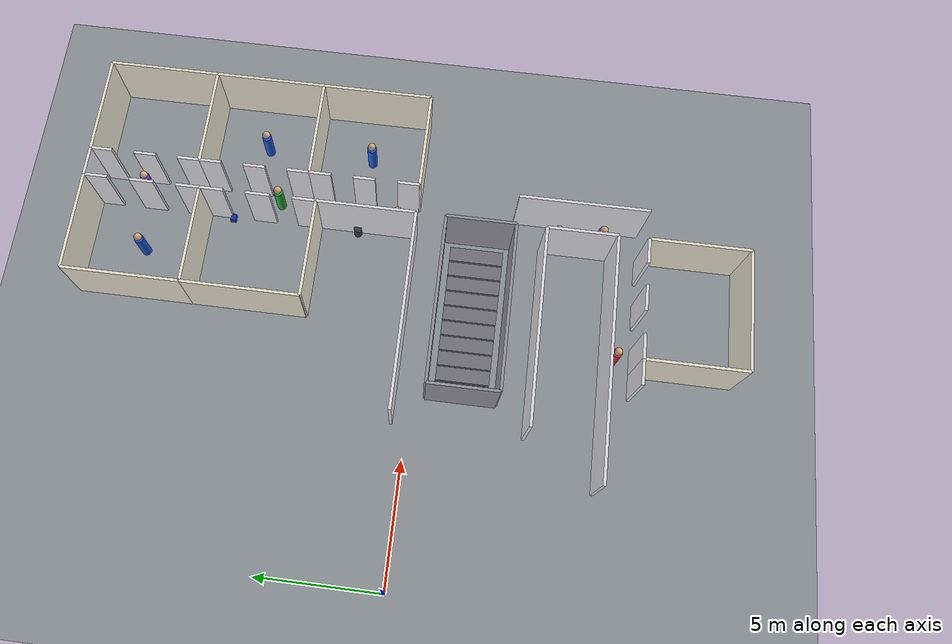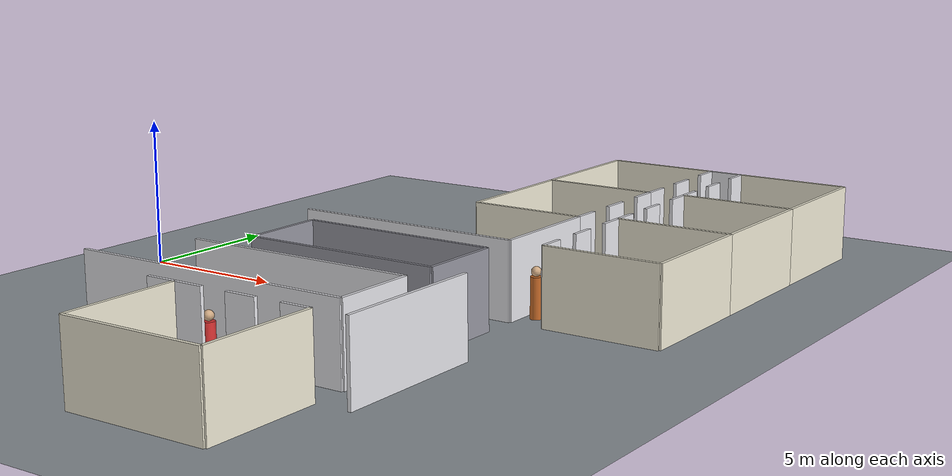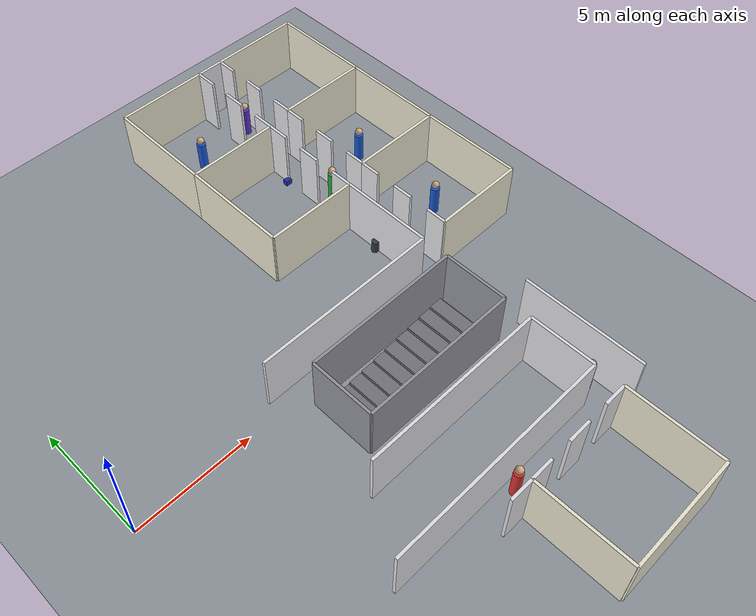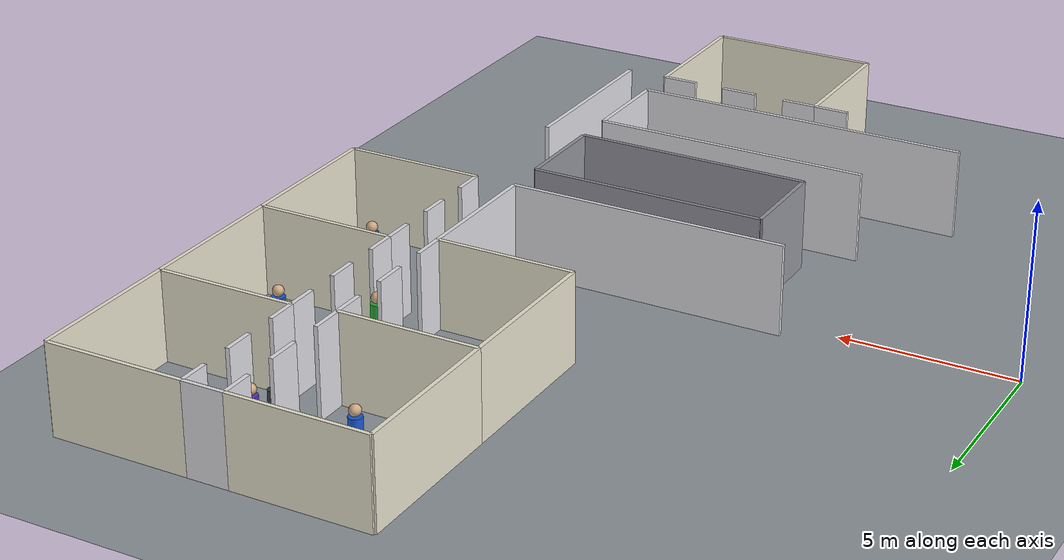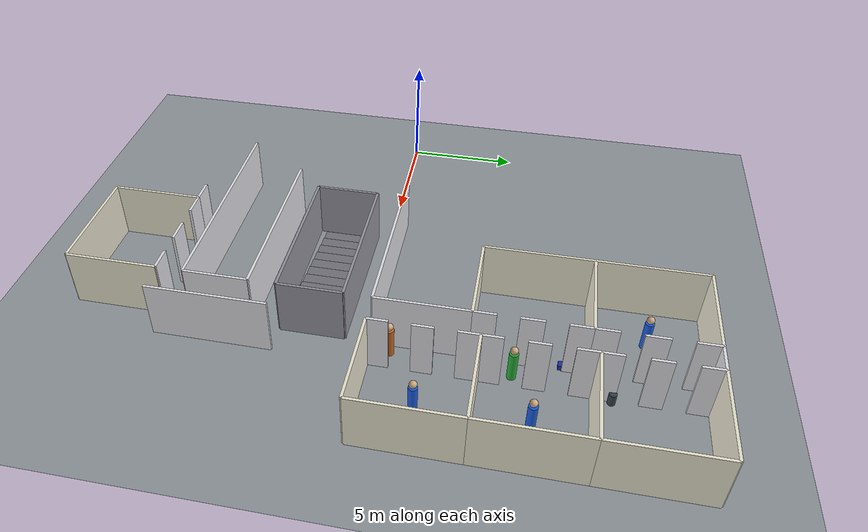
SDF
<sdf version="1.9">
 <world name="school_arena">
  <model name="ground">
   <static>true</static>
   <link name="link">
    <collision name="collision">
     <geometry><plane><normal>0 0 1</normal><size>80 80</size></plane></geometry>
    </collision>
    <visual name="visual">
     <geometry><plane><normal>0 0 1</normal><size>80 80</size></plane></geometry>
     <material><ambient>0.55 0.58 0.60 1</ambient><diffuse>0.55 0.58 0.60 1</diffuse></material>
    </visual>
   </link>
  </model>
  <model name="classroom_05_east">
   <static>true</static>
   <pose>9.5000 -10.6000 1.3000 0 0 0</pose>
   <link name="link">
    <collision name="collision"><geometry><box><size>0.1200 4.0000 2.6000</size></box></geometry></collision>
    <visual name="visual">
     <geometry><box><size>0.1200 4.0000 2.6000</size></box></geometry>
     <material><ambient>0.92 0.90 0.82 1</ambient><diffuse>0.92 0.90 0.82 1</diffuse></material>
    </visual>
   </link>
  </model>
  <model name="classroom_05_front_2">
   <static>true</static>
   <pose>8.9900 -8.6000 1.3000 0 0 0</pose>
   <link name="link">
    <collision name="collision"><geometry><box><size>1.0200 0.1200 2.6000</size></box></geometry></collision>
    <visual name="visual">
     <geometry><box><size>1.0200 0.1200 2.6000</size></box></geometry>
     <material><ambient>0.88 0.88 0.90 1</ambient><diffuse>0.88 0.88 0.90 1</diffuse></material>
    </visual>
   </link>
  </model>
  <model name="classroom_06_south">
   <static>true</static>
   <pose>11.9500 -12.6000 1.3000 0 0 0</pose>
   <link name="link">
    <collision name="collision"><geometry><box><size>4.9000 0.1200 2.6000</size></box></geometry></collision>
    <visual name="visual">
     <geometry><box><size>4.9000 0.1200 2.6000</size></box></geometry>
     <material><ambient>0.92 0.90 0.82 1</ambient><diffuse>0.92 0.90 0.82 1</diffuse></material>
    </visual>
   </link>
  </model>
  <model name="classroom_06_west">
   <static>true</static>
   <pose>9.5000 -10.6000 1.3000 0 0 0</pose>
   <link name="link">
    <collision name="collision"><geometry><box><size>0.1200 4.0000 2.6000</size></box></geometry></collision>
    <visual name="visual">
     <geometry><box><size>0.1200 4.0000 2.6000</size></box></geometry>
     <material><ambient>0.92 0.90 0.82 1</ambient><diffuse>0.92 0.90 0.82 1</diffuse></material>
    </visual>
   </link>
  </model>
  <model name="classroom_06_east">
   <static>true</static>
   <pose>14.4000 -10.6000 1.3000 0 0 0</pose>
   <link name="link">
    <collision name="collision"><geometry><box><size>0.1200 4.0000 2.6000</size></box></geometry></collision>
    <visual name="visual">
     <geometry><box><size>0.1200 4.0000 2.6000</size></box></geometry>
     <material><ambient>0.92 0.90 0.82 1</ambient><diffuse>0.92 0.90 0.82 1</diffuse></material>
    </visual>
   </link>
  </model>
  <model name="classroom_06_front_0">
   <static>true</static>
   <pose>10.0100 -8.6000 1.3000 0 0 0</pose>
   <link name="link">
    <collision name="collision"><geometry><box><size>1.0200 0.1200 2.6000</size></box></geometry></collision>
    <visual name="visual">
     <geometry><box><size>1.0200 0.1200 2.6000</size></box></geometry>
     <material><ambient>0.88 0.88 0.90 1</ambient><diffuse>0.88 0.88 0.90 1</diffuse></material>
    </visual>
   </link>
  </model>
  <model name="classroom_06_front_1">
   <static>true</static>
   <pose>11.9500 -8.6000 1.3000 0 0 0</pose>
   <link name="link">
    <collision name="collision"><geometry><box><size>1.0600 0.1200 2.6000</size></box></geometry></collision>
    <visual name="visual">
     <geometry><box><size>1.0600 0.1200 2.6000</size></box></geometry>
     <material><ambient>0.88 0.88 0.90 1</ambient><diffuse>0.88 0.88 0.90 1</diffuse></material>
    </visual>
   </link>
  </model>
  <model name="classroom_06_front_2">
   <static>true</static>
   <pose>13.8900 -8.6000 1.3000 0 0 0</pose>
   <link name="link">
    <collision name="collision"><geometry><box><size>1.0200 0.1200 2.6000</size></box></geometry></collision>
    <visual name="visual">
     <geometry><box><size>1.0200 0.1200 2.6000</size></box></geometry>
     <material><ambient>0.88 0.88 0.90 1</ambient><diffuse>0.88 0.88 0.90 1</diffuse></material>
    </visual>
   </link>
  </model>
  <model name="classroom_11_south">
   <static>true</static>
   <pose>17.6000 0.6000 1.3000 0 0 0</pose>
   <link name="link">
    <collision name="collision"><geometry><box><size>4.0000 0.1200 2.6000</size></box></geometry></collision>
    <visual name="visual">
     <geometry><box><size>4.0000 0.1200 2.6000</size></box></geometry>
     <material><ambient>0.92 0.90 0.82 1</ambient><diffuse>0.92 0.90 0.82 1</diffuse></material>
    </visual>
   </link>
  </model>
  <model name="classroom_11_north">
   <static>true</static>
   <pose>17.6000 5.0667 1.3000 0 0 0</pose>
   <link name="link">
    <collision name="collision"><geometry><box><size>4.0000 0.1200 2.6000</size></box></geometry></collision>
    <visual name="visual">
     <geometry><box><size>4.0000 0.1200 2.6000</size></box></geometry>
     <material><ambient>0.92 0.90 0.82 1</ambient><diffuse>0.92 0.90 0.82 1</diffuse></material>
    </visual>
   </link>
  </model>
  <model name="classroom_11_east">
   <static>true</static>
   <pose>19.6000 2.8333 1.3000 0 0 0</pose>
   <link name="link">
    <collision name="collision"><geometry><box><size>0.1200 4.4667 2.6000</size></box></geometry></collision>
    <visual name="visual">
     <geometry><box><size>0.1200 4.4667 2.6000</size></box></geometry>
     <material><ambient>0.92 0.90 0.82 1</ambient><diffuse>0.92 0.90 0.82 1</diffuse></material>
    </visual>
   </link>
  </model>
  <model name="classroom_11_front_0">
   <static>true</static>
   <pose>15.6000 1.0450 1.3000 0 0 0</pose>
   <link name="link">
    <collision name="collision"><geometry><box><size>0.1200 0.8900 2.6000</size></box></geometry></collision>
    <visual name="visual">
     <geometry><box><size>0.1200 0.8900 2.6000</size></box></geometry>
     <material><ambient>0.88 0.88 0.90 1</ambient><diffuse>0.88 0.88 0.90 1</diffuse></material>
    </visual>
   </link>
  </model>
  <model name="classroom_11_front_1">
   <static>true</static>
   <pose>15.6000 2.8333 1.3000 0 0 0</pose>
   <link name="link">
    <collision name="collision"><geometry><box><size>0.1200 0.8867 2.6000</size></box></geometry></collision>
    <visual name="visual">
     <geometry><box><size>0.1200 0.8867 2.6000</size></box></geometry>
     <material><ambient>0.88 0.88 0.90 1</ambient><diffuse>0.88 0.88 0.90 1</diffuse></material>
    </visual>
   </link>
  </model>
  <model name="classroom_11_front_2">
   <static>true</static>
   <pose>15.6000 4.6217 1.3000 0 0 0</pose>
   <link name="link">
    <collision name="collision"><geometry><box><size>0.1200 0.8900 2.6000</size></box></geometry></collision>
    <visual name="visual">
     <geometry><box><size>0.1200 0.8900 2.6000</size></box></geometry>
     <material><ambient>0.88 0.88 0.90 1</ambient><diffuse>0.88 0.88 0.90 1</diffuse></material>
    </visual>
   </link>
  </model>
  <model name="classroom_12_south">
   <static>true</static>
   <pose>17.6000 5.0667 1.3000 0 0 0</pose>
   <link name="link">
    <collision name="collision"><geometry><box><size>4.0000 0.1200 2.6000</size></box></geometry></collision>
    <visual name="visual">
     <geometry><box><size>4.0000 0.1200 2.6000</size></box></geometry>
     <material><ambient>0.92 0.90 0.82 1</ambient><diffuse>0.92 0.90 0.82 1</diffuse></material>
    </visual>
   </link>
  </model>
  <model name="classroom_12_north">
   <static>true</static>
   <pose>17.6000 9.5333 1.3000 0 0 0</pose>
   <link name="link">
    <collision name="collision"><geometry><box><size>4.0000 0.1200 2.6000</size></box></geometry></collision>
    <visual name="visual">
     <geometry><box><size>4.0000 0.1200 2.6000</size></box></geometry>
     <material><ambient>0.92 0.90 0.82 1</ambient><diffuse>0.92 0.90 0.82 1</diffuse></material>
    </visual>
   </link>
  </model>
  <model name="classroom_12_east">
   <static>true</static>
   <pose>19.6000 7.3000 1.3000 0 0 0</pose>
   <link name="link">
    <collision name="collision"><geometry><box><size>0.1200 4.4667 2.6000</size></box></geometry></collision>
    <visual name="visual">
     <geometry><box><size>0.1200 4.4667 2.6000</size></box></geometry>
     <material><ambient>0.92 0.90 0.82 1</ambient><diffuse>0.92 0.90 0.82 1</diffuse></material>
    </visual>
   </link>
  </model>
  <model name="classroom_12_front_0">
   <static>true</static>
   <pose>15.6000 5.5117 1.3000 0 0 0</pose>
   <link name="link">
    <collision name="collision"><geometry><box><size>0.1200 0.8900 2.6000</size></box></geometry></collision>
    <visual name="visual">
     <geometry><box><size>0.1200 0.8900 2.6000</size></box></geometry>
     <material><ambient>0.88 0.88 0.90 1</ambient><diffuse>0.88 0.88 0.90 1</diffuse></material>
    </visual>
   </link>
  </model>
  <model name="classroom_12_front_1">
   <static>true</static>
   <pose>15.6000 7.3000 1.3000 0 0 0</pose>
   <link name="link">
    <collision name="collision"><geometry><box><size>0.1200 0.8867 2.6000</size></box></geometry></collision>
    <visual name="visual">
     <geometry><box><size>0.1200 0.8867 2.6000</size></box></geometry>
     <material><ambient>0.88 0.88 0.90 1</ambient><diffuse>0.88 0.88 0.90 1</diffuse></material>
    </visual>
   </link>
  </model>
  <model name="classroom_12_front_2">
   <static>true</static>
   <pose>15.6000 9.0883 1.3000 0 0 0</pose>
   <link name="link">
    <collision name="collision"><geometry><box><size>0.1200 0.8900 2.6000</size></box></geometry></collision>
    <visual name="visual">
     <geometry><box><size>0.1200 0.8900 2.6000</size></box></geometry>
     <material><ambient>0.88 0.88 0.90 1</ambient><diffuse>0.88 0.88 0.90 1</diffuse></material>
    </visual>
   </link>
  </model>
  <model name="classroom_13_south">
   <static>true</static>
   <pose>17.6000 9.5333 1.3000 0 0 0</pose>
   <link name="link">
    <collision name="collision"><geometry><box><size>4.0000 0.1200 2.6000</size></box></geometry></collision>
    <visual name="visual">
     <geometry><box><size>4.0000 0.1200 2.6000</size></box></geometry>
     <material><ambient>0.92 0.90 0.82 1</ambient><diffuse>0.92 0.90 0.82 1</diffuse></material>
    </visual>
   </link>
  </model>
  <model name="classroom_13_north">
   <static>true</static>
   <pose>17.6000 14.0000 1.3000 0 0 0</pose>
   <link name="link">
    <collision name="collision"><geometry><box><size>4.0000 0.1200 2.6000</size></box></geometry></collision>
    <visual name="visual">
     <geometry><box><size>4.0000 0.1200 2.6000</size></box></geometry>
     <material><ambient>0.92 0.90 0.82 1</ambient><diffuse>0.92 0.90 0.82 1</diffuse></material>
    </visual>
   </link>
  </model>
  <model name="classroom_13_east">
   <static>true</static>
   <pose>19.6000 11.7667 1.3000 0 0 0</pose>
   <link name="link">
    <collision name="collision"><geometry><box><size>0.1200 4.4667 2.6000</size></box></geometry></collision>
    <visual name="visual">
     <geometry><box><size>0.1200 4.4667 2.6000</size></box></geometry>
     <material><ambient>0.92 0.90 0.82 1</ambient><diffuse>0.92 0.90 0.82 1</diffuse></material>
    </visual>
   </link>
  </model>
  <model name="classroom_13_front_0">
   <static>true</static>
   <pose>15.6000 9.9783 1.3000 0 0 0</pose>
   <link name="link">
    <collision name="collision"><geometry><box><size>0.1200 0.8900 2.6000</size></box></geometry></collision>
    <visual name="visual">
     <geometry><box><size>0.1200 0.8900 2.6000</size></box></geometry>
     <material><ambient>0.88 0.88 0.90 1</ambient><diffuse>0.88 0.88 0.90 1</diffuse></material>
    </visual>
   </link>
  </model>
  <model name="classroom_13_front_1">
   <static>true</static>
   <pose>15.6000 11.7667 1.3000 0 0 0</pose>
   <link name="link">
    <collision name="collision"><geometry><box><size>0.1200 0.8867 2.6000</size></box></geometry></collision>
    <visual name="visual">
     <geometry><box><size>0.1200 0.8867 2.6000</size></box></geometry>
     <material><ambient>0.88 0.88 0.90 1</ambient><diffuse>0.88 0.88 0.90 1</diffuse></material>
    </visual>
   </link>
  </model>
  <model name="classroom_13_front_2">
   <static>true</static>
   <pose>15.6000 13.5550 1.3000 0 0 0</pose>
   <link name="link">
    <collision name="collision"><geometry><box><size>0.1200 0.8900 2.6000</size></box></geometry></collision>
    <visual name="visual">
     <geometry><box><size>0.1200 0.8900 2.6000</size></box></geometry>
     <material><ambient>0.88 0.88 0.90 1</ambient><diffuse>0.88 0.88 0.90 1</diffuse></material>
    </visual>
   </link>
  </model>
  <model name="classroom_14_south">
   <static>true</static>
   <pose>12.4000 4.6000 1.3000 0 0 0</pose>
   <link name="link">
    <collision name="collision"><geometry><box><size>4.0000 0.1200 2.6000</size></box></geometry></collision>
    <visual name="visual">
     <geometry><box><size>4.0000 0.1200 2.6000</size></box></geometry>
     <material><ambient>0.92 0.90 0.82 1</ambient><diffuse>0.92 0.90 0.82 1</diffuse></material>
    </visual>
   </link>
  </model>
  <model name="classroom_14_north">
   <static>true</static>
   <pose>12.4000 9.3000 1.3000 0 0 0</pose>
   <link name="link">
    <collision name="collision"><geometry><box><size>4.0000 0.1200 2.6000</size></box></geometry></collision>
    <visual name="visual">
     <geometry><box><size>4.0000 0.1200 2.6000</size></box></geometry>
     <material><ambient>0.92 0.90 0.82 1</ambient><diffuse>0.92 0.90 0.82 1</diffuse></material>
    </visual>
   </link>
  </model>
  <model name="classroom_14_west">
   <static>true</static>
   <pose>10.4000 6.9500 1.3000 0 0 0</pose>
   <link name="link">
    <collision name="collision"><geometry><box><size>0.1200 4.7000 2.6000</size></box></geometry></collision>
    <visual name="visual">
     <geometry><box><size>0.1200 4.7000 2.6000</size></box></geometry>
     <material><ambient>0.92 0.90 0.82 1</ambient><diffuse>0.92 0.90 0.82 1</diffuse></material>
    </visual>
   </link>
  </model>
  <model name="classroom_14_front_0">
   <static>true</static>
   <pose>14.4000 5.0800 1.3000 0 0 0</pose>
   <link name="link">
    <collision name="collision"><geometry><box><size>0.1200 0.9600 2.6000</size></box></geometry></collision>
    <visual name="visual">
     <geometry><box><size>0.1200 0.9600 2.6000</size></box></geometry>
     <material><ambient>0.88 0.88 0.90 1</ambient><diffuse>0.88 0.88 0.90 1</diffuse></material>
    </visual>
   </link>
  </model>
  <model name="classroom_14_front_1">
   <static>true</static>
   <pose>14.4000 6.9500 1.3000 0 0 0</pose>
   <link name="link">
    <collision name="collision"><geometry><box><size>0.1200 0.9800 2.6000</size></box></geometry></collision>
    <visual name="visual">
     <geometry><box><size>0.1200 0.9800 2.6000</size></box></geometry>
     <material><ambient>0.88 0.88 0.90 1</ambient><diffuse>0.88 0.88 0.90 1</diffuse></material>
    </visual>
   </link>
  </model>
  <model name="classroom_14_front_2">
   <static>true</static>
   <pose>14.4000 8.8200 1.3000 0 0 0</pose>
   <link name="link">
    <collision name="collision"><geometry><box><size>0.1200 0.9600 2.6000</size></box></geometry></collision>
    <visual name="visual">
     <geometry><box><size>0.1200 0.9600 2.6000</size></box></geometry>
     <material><ambient>0.88 0.88 0.90 1</ambient><diffuse>0.88 0.88 0.90 1</diffuse></material>
    </visual>
   </link>
  </model>
  <model name="classroom_15_south">
   <static>true</static>
   <pose>12.4000 9.3000 1.3000 0 0 0</pose>
   <link name="link">
    <collision name="collision"><geometry><box><size>4.0000 0.1200 2.6000</size></box></geometry></collision>
    <visual name="visual">
     <geometry><box><size>4.0000 0.1200 2.6000</size></box></geometry>
     <material><ambient>0.92 0.90 0.82 1</ambient><diffuse>0.92 0.90 0.82 1</diffuse></material>
    </visual>
   </link>
  </model>
  <model name="classroom_15_north">
   <static>true</static>
   <pose>12.4000 14.0000 1.3000 0 0 0</pose>
   <link name="link">
    <collision name="collision"><geometry><box><size>4.0000 0.1200 2.6000</size></box></geometry></collision>
    <visual name="visual">
     <geometry><box><size>4.0000 0.1200 2.6000</size></box></geometry>
     <material><ambient>0.92 0.90 0.82 1</ambient><diffuse>0.92 0.90 0.82 1</diffuse></material>
    </visual>
   </link>
  </model>
  <model name="classroom_15_west">
   <static>true</static>
   <pose>10.4000 11.6500 1.3000 0 0 0</pose>
   <link name="link">
    <collision name="collision"><geometry><box><size>0.1200 4.7000 2.6000</size></box></geometry></collision>
    <visual name="visual">
     <geometry><box><size>0.1200 4.7000 2.6000</size></box></geometry>
     <material><ambient>0.92 0.90 0.82 1</ambient><diffuse>0.92 0.90 0.82 1</diffuse></material>
    </visual>
   </link>
  </model>
  <model name="classroom_15_front_0">
   <static>true</static>
   <pose>14.4000 9.7800 1.3000 0 0 0</pose>
   <link name="link">
    <collision name="collision"><geometry><box><size>0.1200 0.9600 2.6000</size></box></geometry></collision>
    <visual name="visual">
     <geometry><box><size>0.1200 0.9600 2.6000</size></box></geometry>
     <material><ambient>0.88 0.88 0.90 1</ambient><diffuse>0.88 0.88 0.90 1</diffuse></material>
    </visual>
   </link>
  </model>
  <model name="classroom_15_front_1">
   <static>true</static>
   <pose>14.4000 11.6500 1.3000 0 0 0</pose>
   <link name="link">
    <collision name="collision"><geometry><box><size>0.1200 0.9800 2.6000</size></box></geometry></collision>
    <visual name="visual">
     <geometry><box><size>0.1200 0.9800 2.6000</size></box></geometry>
     <material><ambient>0.88 0.88 0.90 1</ambient><diffuse>0.88 0.88 0.90 1</diffuse></material>
    </visual>
   </link>
  </model>
  <model name="classroom_15_front_2">
   <static>true</static>
   <pose>14.4000 13.5200 1.3000 0 0 0</pose>
   <link name="link">
    <collision name="collision"><geometry><box><size>0.1200 0.9600 2.6000</size></box></geometry></collision>
    <visual name="visual">
     <geometry><box><size>0.1200 0.9600 2.6000</size></box></geometry>
     <material><ambient>0.88 0.88 0.90 1</ambient><diffuse>0.88 0.88 0.90 1</diffuse></material>
    </visual>
   </link>
  </model>
  <model name="corridor_A_north_filler">
   <static>true</static>
   <pose>9.5000 -7.4000 1.3000 0 0 0</pose>
   <link name="link">
    <collision name="collision"><geometry><box><size>9.8000 0.1200 2.6000</size></box></geometry></collision>
    <visual name="visual">
     <geometry><box><size>9.8000 0.1200 2.6000</size></box></geometry>
     <material><ambient>0.88 0.88 0.90 1</ambient><diffuse>0.88 0.88 0.90 1</diffuse></material>
    </visual>
   </link>
  </model>
  <model name="corridor_B_outer_east">
   <static>true</static>
   <pose>15.6000 -6.0000 1.3000 0 0 0</pose>
   <link name="link">
    <collision name="collision"><geometry><box><size>0.1200 5.2000 2.6000</size></box></geometry></collision>
    <visual name="visual">
     <geometry><box><size>0.1200 5.2000 2.6000</size></box></geometry>
     <material><ambient>0.88 0.88 0.90 1</ambient><diffuse>0.88 0.88 0.90 1</diffuse></material>
    </visual>
   </link>
  </model>
  <model name="corridor_B_inner_west_lower">
   <static>true</static>
   <pose>14.4000 -6.0000 1.3000 0 0 0</pose>
   <link name="link">
    <collision name="collision"><geometry><box><size>0.1200 2.8000 2.6000</size></box></geometry></collision>
    <visual name="visual">
     <geometry><box><size>0.1200 2.8000 2.6000</size></box></geometry>
     <material><ambient>0.88 0.88 0.90 1</ambient><diffuse>0.88 0.88 0.90 1</diffuse></material>
    </visual>
   </link>
  </model>
  <model name="corridor_C_outer_south">
   <static>true</static>
   <pose>10.4000 -4.6000 1.3000 0 0 0</pose>
   <link name="link">
    <collision name="collision"><geometry><box><size>8.0000 0.1200 2.6000</size></box></geometry></collision>
    <visual name="visual">
     <geometry><box><size>8.0000 0.1200 2.6000</size></box></geometry>
     <material><ambient>0.88 0.88 0.90 1</ambient><diffuse>0.88 0.88 0.90 1</diffuse></material>
    </visual>
   </link>
  </model>
  <model name="corridor_E_outer_north">
   <static>true</static>
   <pose>10.4000 0.6000 1.3000 0 0 0</pose>
   <link name="link">
    <collision name="collision"><geometry><box><size>8.0000 0.1200 2.6000</size></box></geometry></collision>
    <visual name="visual">
     <geometry><box><size>8.0000 0.1200 2.6000</size></box></geometry>
     <material><ambient>0.88 0.88 0.90 1</ambient><diffuse>0.88 0.88 0.90 1</diffuse></material>
    </visual>
   </link>
  </model>
  <model name="corridor_F_west_lower">
   <static>true</static>
   <pose>14.4000 2.6000 1.3000 0 0 0</pose>
   <link name="link">
    <collision name="collision"><geometry><box><size>0.1200 4.0000 2.6000</size></box></geometry></collision>
    <visual name="visual">
     <geometry><box><size>0.1200 4.0000 2.6000</size></box></geometry>
     <material><ambient>0.88 0.88 0.90 1</ambient><diffuse>0.88 0.88 0.90 1</diffuse></material>
    </visual>
   </link>
  </model>
  <model name="corridor_F_north_end">
   <static>true</static>
   <pose>15.0000 14.0000 1.3000 0 0 0</pose>
   <link name="link">
    <collision name="collision"><geometry><box><size>1.2000 0.1200 2.6000</size></box></geometry></collision>
    <visual name="visual">
     <geometry><box><size>1.2000 0.1200 2.6000</size></box></geometry>
     <material><ambient>0.88 0.88 0.90 1</ambient><diffuse>0.88 0.88 0.90 1</diffuse></material>
    </visual>
   </link>
  </model>
  <model name="stairs_south_wall">
   <static>true</static>
   <pose>11.0000 -3.4000 1.3000 0 0 0</pose>
   <link name="link">
    <collision name="collision"><geometry><box><size>6.8000 0.1200 2.6000</size></box></geometry></collision>
    <visual name="visual">
     <geometry><box><size>6.8000 0.1200 2.6000</size></box></geometry>
     <material><ambient>0.58 0.58 0.62 1</ambient><diffuse>0.58 0.58 0.62 1</diffuse></material>
    </visual>
   </link>
  </model>
  <model name="stairs_west_wall">
   <static>true</static>
   <pose>7.6000 -2.0000 1.3000 0 0 0</pose>
   <link name="link">
    <collision name="collision"><geometry><box><size>0.1200 2.8000 2.6000</size></box></geometry></collision>
    <visual name="visual">
     <geometry><box><size>0.1200 2.8000 2.6000</size></box></geometry>
     <material><ambient>0.58 0.58 0.62 1</ambient><diffuse>0.58 0.58 0.62 1</diffuse></material>
    </visual>
   </link>
  </model>
  <model name="stairs_north_wall">
   <static>true</static>
   <pose>11.0000 -0.6000 1.3000 0 0 0</pose>
   <link name="link">
    <collision name="collision"><geometry><box><size>6.8000 0.1200 2.6000</size></box></geometry></collision>
    <visual name="visual">
     <geometry><box><size>6.8000 0.1200 2.6000</size></box></geometry>
     <material><ambient>0.58 0.58 0.62 1</ambient><diffuse>0.58 0.58 0.62 1</diffuse></material>
    </visual>
   </link>
  </model>
  <model name="stairs_east_wall">
   <static>true</static>
   <pose>14.4000 -2.0000 1.3000 0 0 0</pose>
   <link name="link">
    <collision name="collision"><geometry><box><size>0.1200 2.8000 2.6000</size></box></geometry></collision>
    <visual name="visual">
     <geometry><box><size>0.1200 2.8000 2.6000</size></box></geometry>
     <material><ambient>0.58 0.58 0.62 1</ambient><diffuse>0.58 0.58 0.62 1</diffuse></material>
    </visual>
   </link>
  </model>
  <model name="stair_step_01">
   <static>true</static>
   <pose>8.0500 -2.0000 0.0400 0 0 0</pose>
   <link name="link">
    <collision name="collision"><geometry><box><size>0.5800 2.1500 0.0800</size></box></geometry></collision>
    <visual name="visual">
     <geometry><box><size>0.5800 2.1500 0.0800</size></box></geometry>
     <material><ambient>0.45 0.45 0.48 1</ambient><diffuse>0.45 0.45 0.48 1</diffuse></material>
    </visual>
   </link>
  </model>
  <model name="stair_step_02">
   <static>true</static>
   <pose>8.6600 -2.0000 0.0800 0 0 0</pose>
   <link name="link">
    <collision name="collision"><geometry><box><size>0.5800 2.1500 0.1600</size></box></geometry></collision>
    <visual name="visual">
     <geometry><box><size>0.5800 2.1500 0.1600</size></box></geometry>
     <material><ambient>0.45 0.45 0.48 1</ambient><diffuse>0.45 0.45 0.48 1</diffuse></material>
    </visual>
   </link>
  </model>
  <model name="stair_step_03">
   <static>true</static>
   <pose>9.2700 -2.0000 0.1200 0 0 0</pose>
   <link name="link">
    <collision name="collision"><geometry><box><size>0.5800 2.1500 0.2400</size></box></geometry></collision>
    <visual name="visual">
     <geometry><box><size>0.5800 2.1500 0.2400</size></box></geometry>
     <material><ambient>0.45 0.45 0.48 1</ambient><diffuse>0.45 0.45 0.48 1</diffuse></material>
    </visual>
   </link>
  </model>
  <model name="stair_step_04">
   <static>true</static>
   <pose>9.8800 -2.0000 0.1600 0 0 0</pose>
   <link name="link">
    <collision name="collision"><geometry><box><size>0.5800 2.1500 0.3200</size></box></geometry></collision>
    <visual name="visual">
     <geometry><box><size>0.5800 2.1500 0.3200</size></box></geometry>
     <material><ambient>0.45 0.45 0.48 1</ambient><diffuse>0.45 0.45 0.48 1</diffuse></material>
    </visual>
   </link>
  </model>
  <model name="stair_step_05">
   <static>true</static>
   <pose>10.4900 -2.0000 0.2000 0 0 0</pose>
   <link name="link">
    <collision name="collision"><geometry><box><size>0.5800 2.1500 0.4000</size></box></geometry></collision>
    <visual name="visual">
     <geometry><box><size>0.5800 2.1500 0.4000</size></box></geometry>
     <material><ambient>0.45 0.45 0.48 1</ambient><diffuse>0.45 0.45 0.48 1</diffuse></material>
    </visual>
   </link>
  </model>
  <model name="stair_step_06">
   <static>true</static>
   <pose>11.1000 -2.0000 0.2400 0 0 0</pose>
   <link name="link">
    <collision name="collision"><geometry><box><size>0.5800 2.1500 0.4800</size></box></geometry></collision>
    <visual name="visual">
     <geometry><box><size>0.5800 2.1500 0.4800</size></box></geometry>
     <material><ambient>0.45 0.45 0.48 1</ambient><diffuse>0.45 0.45 0.48 1</diffuse></material>
    </visual>
   </link>
  </model>
  <model name="stair_step_07">
   <static>true</static>
   <pose>11.7100 -2.0000 0.2800 0 0 0</pose>
   <link name="link">
    <collision name="collision"><geometry><box><size>0.5800 2.1500 0.5600</size></box></geometry></collision>
    <visual name="visual">
     <geometry><box><size>0.5800 2.1500 0.5600</size></box></geometry>
     <material><ambient>0.45 0.45 0.48 1</ambient><diffuse>0.45 0.45 0.48 1</diffuse></material>
    </visual>
   </link>
  </model>
  <model name="stair_step_08">
   <static>true</static>
   <pose>12.3200 -2.0000 0.3200 0 0 0</pose>
   <link name="link">
    <collision name="collision"><geometry><box><size>0.5800 2.1500 0.6400</size></box></geometry></collision>
    <visual name="visual">
     <geometry><box><size>0.5800 2.1500 0.6400</size></box></geometry>
     <material><ambient>0.45 0.45 0.48 1</ambient><diffuse>0.45 0.45 0.48 1</diffuse></material>
    </visual>
   </link>
  </model>
  <model name="stair_step_09">
   <static>true</static>
   <pose>12.9300 -2.0000 0.3600 0 0 0</pose>
   <link name="link">
    <collision name="collision"><geometry><box><size>0.5800 2.1500 0.7200</size></box></geometry></collision>
    <visual name="visual">
     <geometry><box><size>0.5800 2.1500 0.7200</size></box></geometry>
     <material><ambient>0.45 0.45 0.48 1</ambient><diffuse>0.45 0.45 0.48 1</diffuse></material>
    </visual>
   </link>
  </model>
  <model name="stair_step_10">
   <static>true</static>
   <pose>13.5400 -2.0000 0.4000 0 0 0</pose>
   <link name="link">
    <collision name="collision"><geometry><box><size>0.5800 2.1500 0.8000</size></box></geometry></collision>
    <visual name="visual">
     <geometry><box><size>0.5800 2.1500 0.8000</size></box></geometry>
     <material><ambient>0.45 0.45 0.48 1</ambient><diffuse>0.45 0.45 0.48 1</diffuse></material>
    </visual>
   </link>
  </model>
  <model name="trash_bin_01">
   <static>true</static>
   <pose>14.2800 3.0000 0.2750 0.0000 0.0000 0.0000</pose>
   <link name="link">
    <collision name="collision">
     <geometry><cylinder><radius>0.1600</radius><length>0.5500</length></cylinder></geometry>
    </collision>
    <visual name="visual">
     <geometry><cylinder><radius>0.1600</radius><length>0.5500</length></cylinder></geometry>
     <material><ambient>0.20 0.25 0.28 1</ambient><diffuse>0.20 0.25 0.28 1</diffuse></material>
    </visual>
   </link>
  </model>
  <model name="trash_bin_02">
   <static>true</static>
   <pose>15.7200 10.3000 0.2750 0.0000 0.0000 0.0000</pose>
   <link name="link">
    <collision name="collision">
     <geometry><cylinder><radius>0.1600</radius><length>0.5500</length></cylinder></geometry>
    </collision>
    <visual name="visual">
     <geometry><cylinder><radius>0.1600</radius><length>0.5500</length></cylinder></geometry>
     <material><ambient>0.20 0.25 0.28 1</ambient><diffuse>0.20 0.25 0.28 1</diffuse></material>
    </visual>
   </link>
  </model>
  <model name="backpack_02">
   <static>true</static>
   <pose>14.2800 8.3000 0.1200 0.0000 0.0000 0.0000</pose>
   <link name="link">
    <collision name="collision"><geometry><box><size>0.2800 0.2200 0.2400</size></box></geometry></collision>
    <visual name="visual">
     <geometry><box><size>0.2800 0.2200 0.2400</size></box></geometry>
     <material><ambient>0.10 0.20 0.65 1</ambient><diffuse>0.10 0.20 0.65 1</diffuse></material>
    </visual>
   </link>
  </model>
  <model name="student_opposite_A">
   <static>false</static>
   <pose>10.000 -7.850 0.000 0 0 3.14159</pose>
   <link name="base_link">
    <kinematic>true</kinematic>
    <gravity>false</gravity>
    <inertial>
     <mass>8.0</mass>
     <inertia><ixx>12.0</ixx><ixy>0</ixy><ixz>0</ixz><iyy>12.0</iyy><iyz>0</iyz><izz>0.45</izz></inertia>
    </inertial>
    <visual name="body">
     <geometry><cylinder><radius>0.19</radius><length>1.35</length></cylinder></geometry>
     <pose>0 0 0.675 0 0 0</pose>
     <material><ambient>0.85 0.20 0.20 1</ambient><diffuse>0.85 0.20 0.20 1</diffuse></material>
    </visual>
    <visual name="head">
     <pose>0 0 1.510 0 0 0</pose>
     <geometry><sphere><radius>0.16</radius></sphere></geometry>
     <material><ambient>0.82 0.67 0.52 1</ambient><diffuse>0.82 0.67 0.52 1</diffuse></material>
    </visual>
   </link>
  </model>
  <model name="student_corner_B">
   <static>false</static>
   <pose>15.050 -7.000 0.000 0 0 1.5708</pose>
   <link name="base_link">
    <kinematic>true</kinematic>
    <gravity>false</gravity>
    <inertial>
     <mass>8.0</mass>
     <inertia><ixx>12.0</ixx><ixy>0</ixy><ixz>0</ixz><iyy>12.0</iyy><iyz>0</iyz><izz>0.45</izz></inertia>
    </inertial>
    <visual name="body">
     <geometry><cylinder><radius>0.19</radius><length>1.35</length></cylinder></geometry>
     <pose>0 0 0.675 0 0 0</pose>
     <material><ambient>0.60 0.20 0.75 1</ambient><diffuse>0.60 0.20 0.75 1</diffuse></material>
    </visual>
    <visual name="head">
     <pose>0 0 1.510 0 0 0</pose>
     <geometry><sphere><radius>0.16</radius></sphere></geometry>
     <material><ambient>0.82 0.67 0.52 1</ambient><diffuse>0.82 0.67 0.52 1</diffuse></material>
    </visual>
   </link>
  </model>
  <model name="student_stair_loop">
   <static>false</static>
   <pose>14.850 -5.200 0.000 0 0 1.5708</pose>
   <link name="base_link">
    <kinematic>true</kinematic>
    <gravity>false</gravity>
    <inertial>
     <mass>8.0</mass>
     <inertia><ixx>12.0</ixx><ixy>0</ixy><ixz>0</ixz><iyy>12.0</iyy><iyz>0</iyz><izz>0.45</izz></inertia>
    </inertial>
    <visual name="body">
     <geometry><cylinder><radius>0.19</radius><length>1.35</length></cylinder></geometry>
     <pose>0 0 0.675 0 0 0</pose>
     <material><ambient>0.90 0.55 0.10 1</ambient><diffuse>0.90 0.55 0.10 1</diffuse></material>
    </visual>
    <visual name="head">
     <pose>0 0 1.510 0 0 0</pose>
     <geometry><sphere><radius>0.16</radius></sphere></geometry>
     <material><ambient>0.82 0.67 0.52 1</ambient><diffuse>0.82 0.67 0.52 1</diffuse></material>
    </visual>
   </link>
  </model>
  <model name="student_vertical_up">
   <static>false</static>
   <pose>14.850 1.400 0.000 0 0 1.5708</pose>
   <link name="base_link">
    <kinematic>true</kinematic>
    <gravity>false</gravity>
    <inertial>
     <mass>8.0</mass>
     <inertia><ixx>12.0</ixx><ixy>0</ixy><ixz>0</ixz><iyy>12.0</iyy><iyz>0</iyz><izz>0.45</izz></inertia>
    </inertial>
    <visual name="body">
     <geometry><cylinder><radius>0.19</radius><length>1.35</length></cylinder></geometry>
     <pose>0 0 0.675 0 0 0</pose>
     <material><ambient>0.75 0.40 0.15 1</ambient><diffuse>0.75 0.40 0.15 1</diffuse></material>
    </visual>
    <visual name="head">
     <pose>0 0 1.510 0 0 0</pose>
     <geometry><sphere><radius>0.16</radius></sphere></geometry>
     <material><ambient>0.82 0.67 0.52 1</ambient><diffuse>0.82 0.67 0.52 1</diffuse></material>
    </visual>
   </link>
  </model>
  <model name="student_vertical_down">
   <static>false</static>
   <pose>15.150 12.000 0.000 0 0 -1.5708</pose>
   <link name="base_link">
    <kinematic>true</kinematic>
    <gravity>false</gravity>
    <inertial>
     <mass>8.0</mass>
     <inertia><ixx>12.0</ixx><ixy>0</ixy><ixz>0</ixz><iyy>12.0</iyy><iyz>0</iyz><izz>0.45</izz></inertia>
    </inertial>
    <visual name="body">
     <geometry><cylinder><radius>0.19</radius><length>1.35</length></cylinder></geometry>
     <pose>0 0 0.675 0 0 0</pose>
     <material><ambient>0.35 0.20 0.80 1</ambient><diffuse>0.35 0.20 0.80 1</diffuse></material>
    </visual>
    <visual name="head">
     <pose>0 0 1.510 0 0 0</pose>
     <geometry><sphere><radius>0.16</radius></sphere></geometry>
     <material><ambient>0.82 0.67 0.52 1</ambient><diffuse>0.82 0.67 0.52 1</diffuse></material>
    </visual>
   </link>
  </model>
  <model name="student_short_cross">
   <static>false</static>
   <pose>15.150 6.400 0.000 0 0 3.14159</pose>
   <link name="base_link">
    <kinematic>true</kinematic>
    <gravity>false</gravity>
    <inertial>
     <mass>8.0</mass>
     <inertia><ixx>12.0</ixx><ixy>0</ixy><ixz>0</ixz><iyy>12.0</iyy><iyz>0</iyz><izz>0.45</izz></inertia>
    </inertial>
    <visual name="body">
     <geometry><cylinder><radius>0.19</radius><length>1.35</length></cylinder></geometry>
     <pose>0 0 0.675 0 0 0</pose>
     <material><ambient>0.15 0.65 0.20 1</ambient><diffuse>0.15 0.65 0.20 1</diffuse></material>
    </visual>
    <visual name="head">
     <pose>0 0 1.510 0 0 0</pose>
     <geometry><sphere><radius>0.16</radius></sphere></geometry>
     <material><ambient>0.82 0.67 0.52 1</ambient><diffuse>0.82 0.67 0.52 1</diffuse></material>
    </visual>
   </link>
  </model>
  <model name="event_agent_1">
   <static>false</static>
   <pose>12.40000 11.65000 0.000 0 0 -0.505099</pose>
   <link name="base_link">
    <kinematic>true</kinematic>
    <gravity>false</gravity>
    <inertial>
     <mass>8.0</mass>
     <inertia><ixx>12.0</ixx><ixy>0</ixy><ixz>0</ixz><iyy>12.0</iyy><iyz>0</iyz><izz>0.45</izz></inertia>
    </inertial>
    <visual name="body">
     <geometry><cylinder><radius>0.19</radius><length>1.35</length></cylinder></geometry>
     <pose>0 0 0.675 0 0 0</pose>
     <material><ambient>0.10 0.35 0.85 1</ambient><diffuse>0.10 0.35 0.85 1</diffuse></material>
    </visual>
    <visual name="head">
     <pose>0 0 1.510 0 0 0</pose>
     <geometry><sphere><radius>0.16</radius></sphere></geometry>
     <material><ambient>0.82 0.67 0.52 1</ambient><diffuse>0.82 0.67 0.52 1</diffuse></material>
    </visual>
   </link>
  </model>
  <model name="background_agent_9">
   <static>false</static>
   <pose>17.60000 7.30000 0.000 0 0 -2.657777</pose>
   <link name="base_link">
    <kinematic>true</kinematic>
    <gravity>false</gravity>
    <inertial>
     <mass>8.0</mass>
     <inertia><ixx>12.0</ixx><ixy>0</ixy><ixz>0</ixz><iyy>12.0</iyy><iyz>0</iyz><izz>0.45</izz></inertia>
    </inertial>
    <visual name="body">
     <geometry><cylinder><radius>0.19</radius><length>1.35</length></cylinder></geometry>
     <pose>0 0 0.675 0 0 0</pose>
     <material><ambient>0.10 0.35 0.85 1</ambient><diffuse>0.10 0.35 0.85 1</diffuse></material>
    </visual>
    <visual name="head">
     <pose>0 0 1.510 0 0 0</pose>
     <geometry><sphere><radius>0.16</radius></sphere></geometry>
     <material><ambient>0.82 0.67 0.52 1</ambient><diffuse>0.82 0.67 0.52 1</diffuse></material>
    </visual>
   </link>
  </model>
  <model name="background_agent_10">
   <static>false</static>
   <pose>17.60000 2.83330 0.000 0 0 -2.657777</pose>
   <link name="base_link">
    <kinematic>true</kinematic>
    <gravity>false</gravity>
    <inertial>
     <mass>8.0</mass>
     <inertia><ixx>12.0</ixx><ixy>0</ixy><ixz>0</ixz><iyy>12.0</iyy><iyz>0</iyz><izz>0.45</izz></inertia>
    </inertial>
    <visual name="body">
     <geometry><cylinder><radius>0.19</radius><length>1.35</length></cylinder></geometry>
     <pose>0 0 0.675 0 0 0</pose>
     <material><ambient>0.10 0.35 0.85 1</ambient><diffuse>0.10 0.35 0.85 1</diffuse></material>
    </visual>
    <visual name="head">
     <pose>0 0 1.510 0 0 0</pose>
     <geometry><sphere><radius>0.16</radius></sphere></geometry>
     <material><ambient>0.82 0.67 0.52 1</ambient><diffuse>0.82 0.67 0.52 1</diffuse></material>
    </visual>
   </link>
  </model>
 </world>
</sdf>
